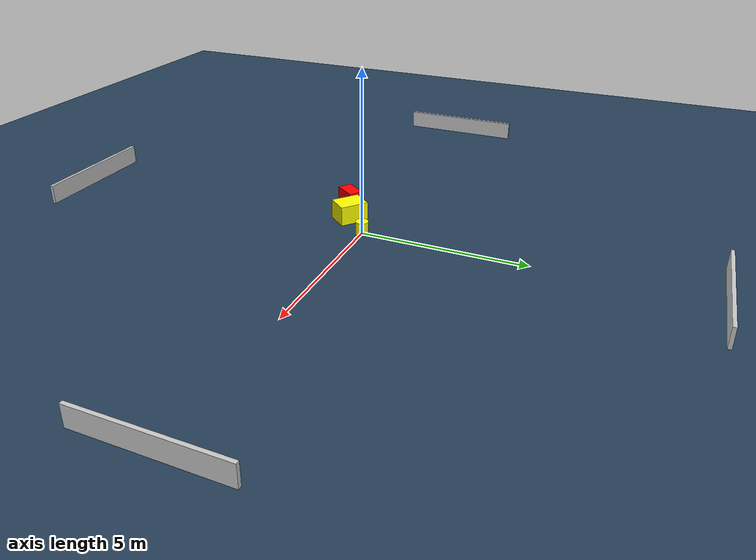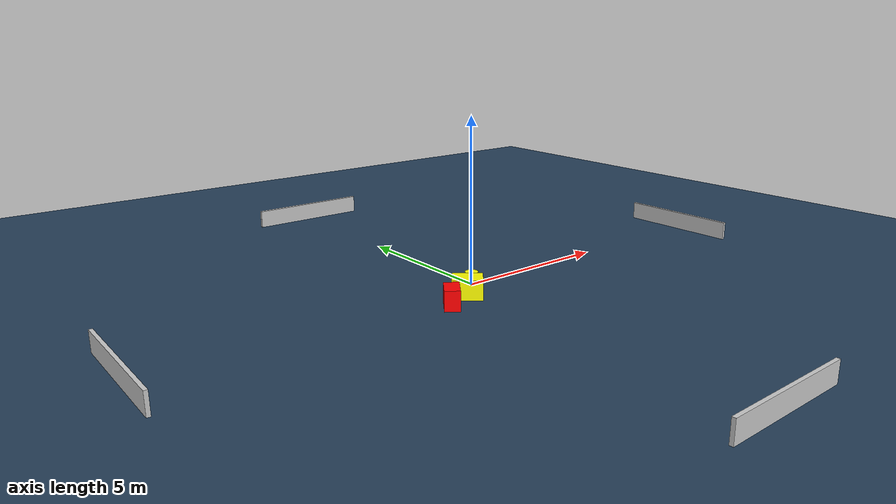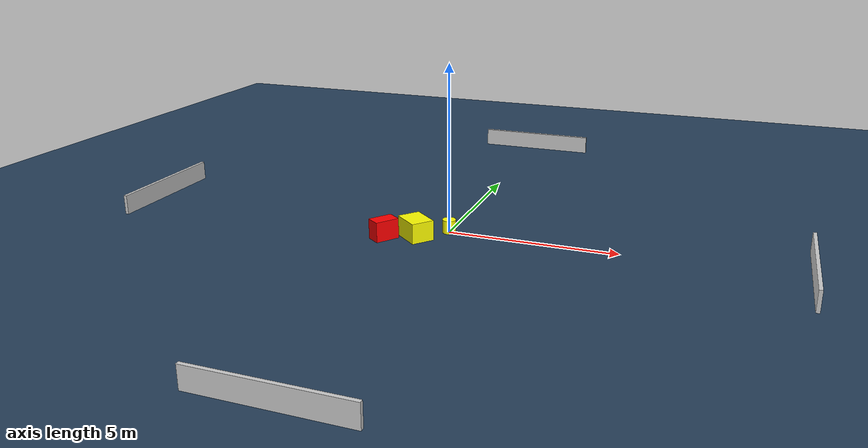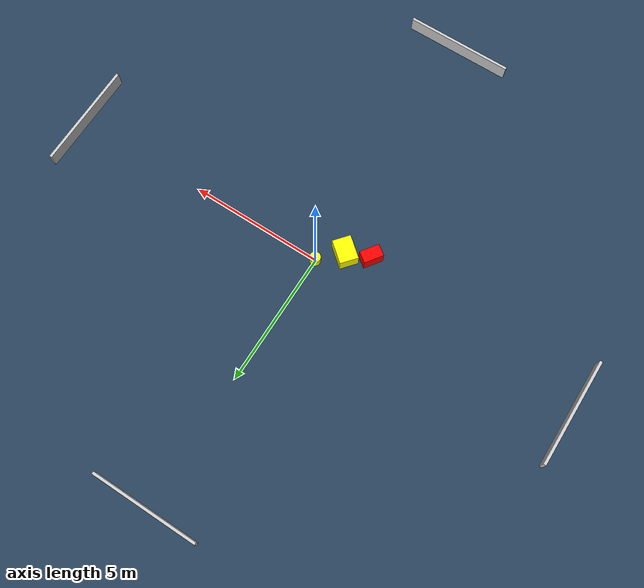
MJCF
<?xml version="1.0" ?>
<mujoco model="generated_environment">
  <option timestep="0.01" integrator="RK4" cone="elliptic"/>
  <default>
    <geom density="1"/>
  </default>
  <asset>
    <texture builtin="gradient" height="3072" name="skybox" rgb1="0.3 0.5 0.7" rgb2="0 0 0" type="skybox" width="512"/>
    <texture builtin="checker" height="300" name="groundplane" rgb1="0.2 0.3 0.4" rgb2="0.1 0.2 0.3" type="2d" width="300"/>
    <material name="groundplane" reflectance="0.2" texrepeat="5 5" texture="groundplane"/>
  </asset>
  <worldbody>
    <light dir="0 0 -1" directional="true" pos="0 0 1.5"/>
    <geom condim="3" friction="0.5 0.005 0.001" material="groundplane" name="floor" pos="0 0 0" size="0 0 0.05" type="plane"/>
    <body name="walls">
      <geom name="wall_1" condim="4" pos="-10.0 0.0 0.3" rgba="0.800000011920929 0.800000011920929 0.800000011920929 1.0" size="0.05 2.0 0.3" type="box"/>
      <geom name="wall_2" condim="4" pos="10.0 0.0 0.3" rgba="0.800000011920929 0.800000011920929 0.800000011920929 1.0" size="0.05 2.0 0.3" type="box"/>
      <geom name="wall_3" condim="4" pos="0.0 -10.0 0.3" rgba="0.800000011920929 0.800000011920929 0.800000011920929 1.0" size="2.0 0.05 0.3" type="box"/>
      <geom name="wall_4" condim="4" pos="0.0 10.0 0.3" rgba="0.800000011920929 0.800000011920929 0.800000011920929 1.0" size="2.0 0.05 0.3" type="box"/>
    </body>
    <body name="robot">
      <joint name="joint_x" type="slide" pos="0 0 0" axis="1 0 0"/>
      <joint name="joint_y" type="slide" pos="0 0 0" axis="0 1 0"/>
      <geom name="robot" type="cylinder" pos="0.0 0.0 0.2" size="0.2 0.2 0.0" mass="5.0" friction="1.0 0.005 0.0001" condim="4" rgba="1.0 1.0 0.0 1.0"/>
    </body>
    <body name="obstacle_1_movable">
      <geom name="obstacle_1_movable" condim="4" pos="-0.7610771949118037 -0.7392443864786891 0.3" euler="0 0 140.39596918335943" friction="0.0 0.005 0.001" rgba="1.0 1.0 0.0 1.0" size="0.44173443737430196 0.34116688091862246 0.3" type="box" mass="0.1"/>
      <joint type="free"/>
    </body>
    <body name="obstacle_2_static">
      <geom name="obstacle_2_static" condim="4" pos="-1.6088383371938435 -1.1009309501831936 0.3" euler="0 0 234.55442425498697" friction="0.0 0.005 0.001" rgba="1.0 0.0 0.0 1.0" size="0.36398725017801314 0.22356667553333953 0.3" type="box"/>
    </body>
  </worldbody>
  <actuator>
    <motor name="actuator_x" joint="joint_x" gear="1" ctrlrange="-1 1"/>
    <motor name="actuator_y" joint="joint_y" gear="1" ctrlrange="-1 1"/>
  </actuator>
</mujoco>
